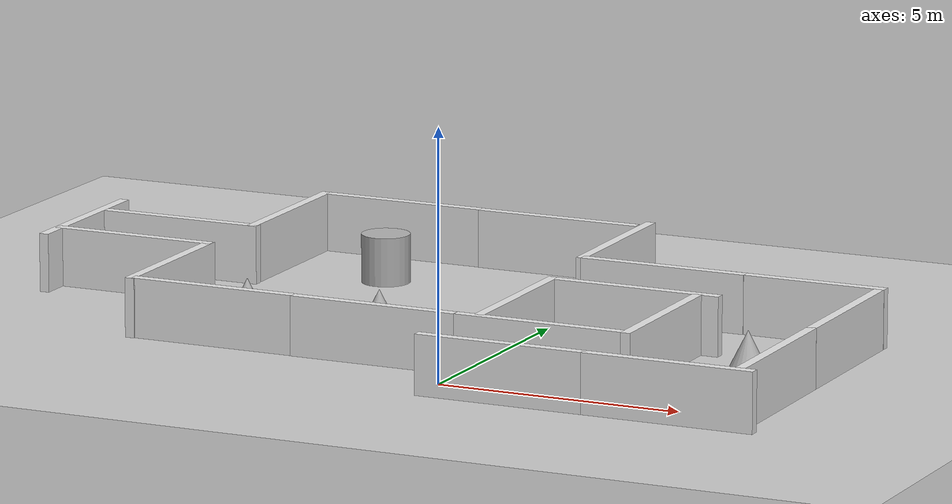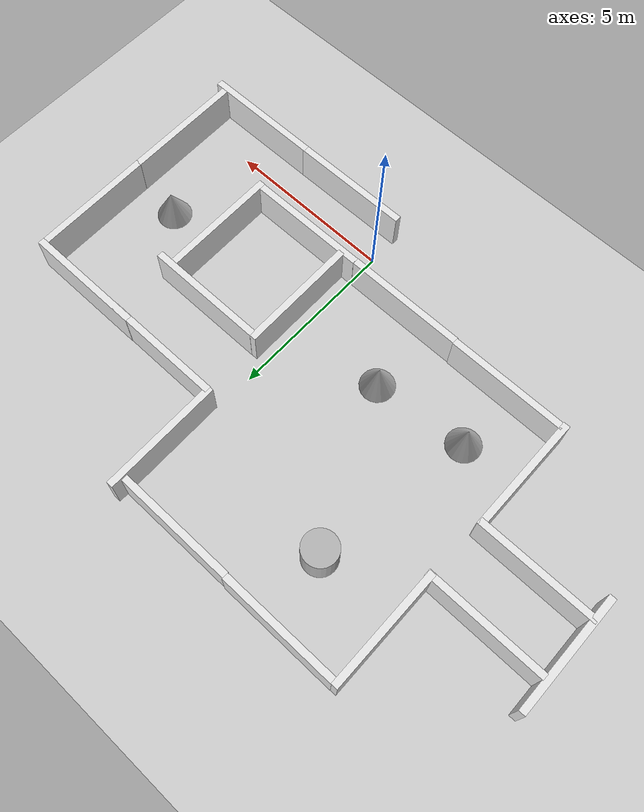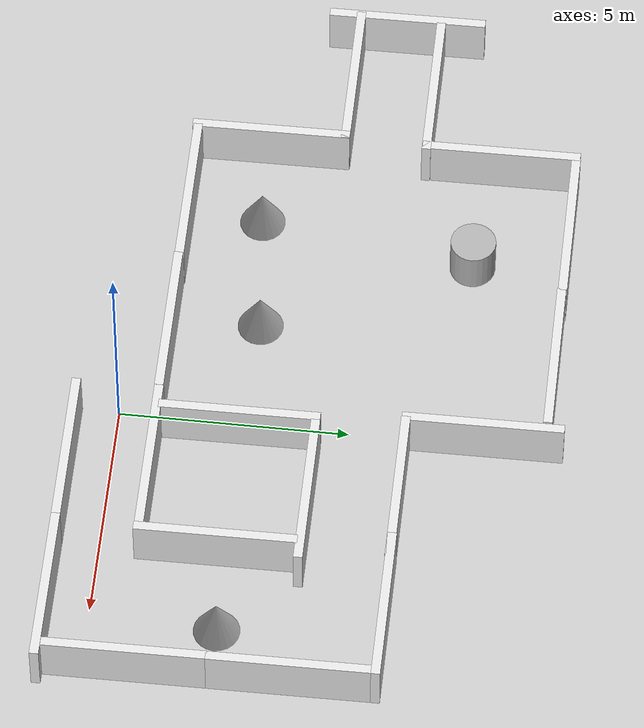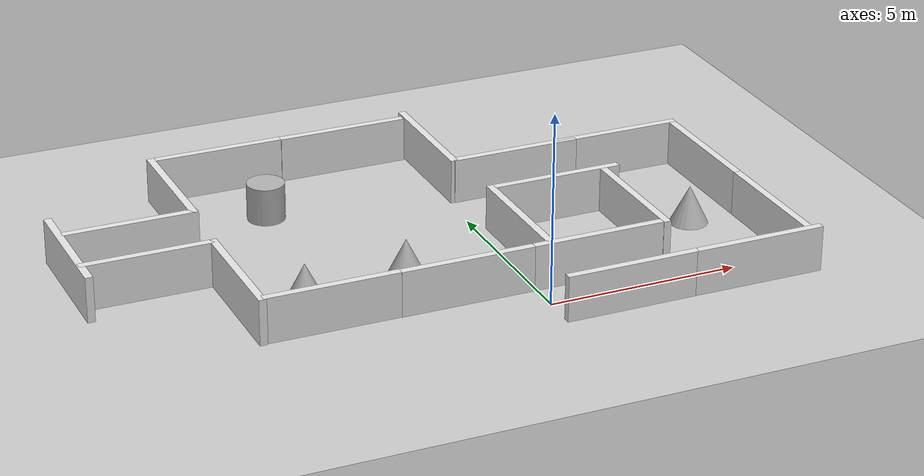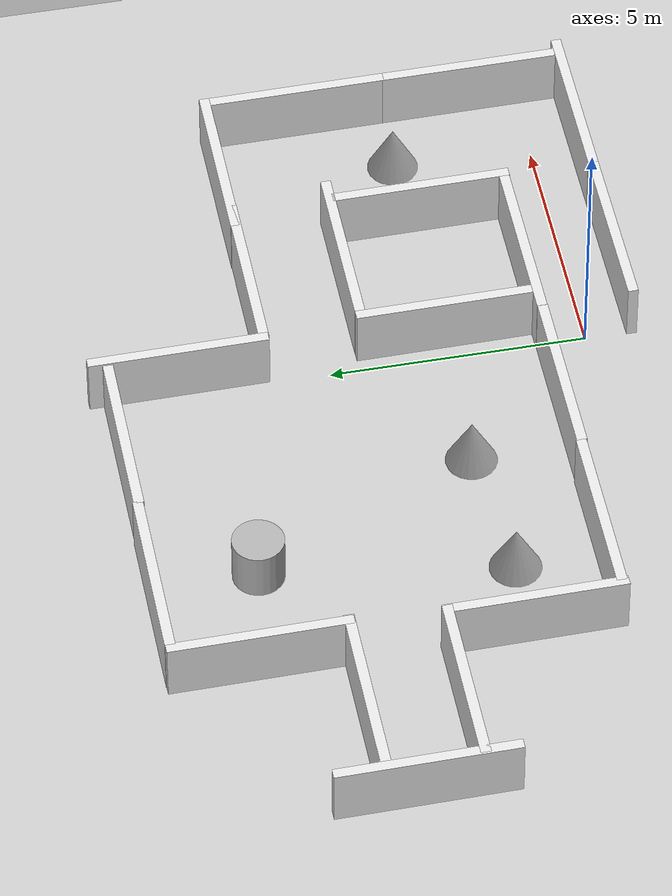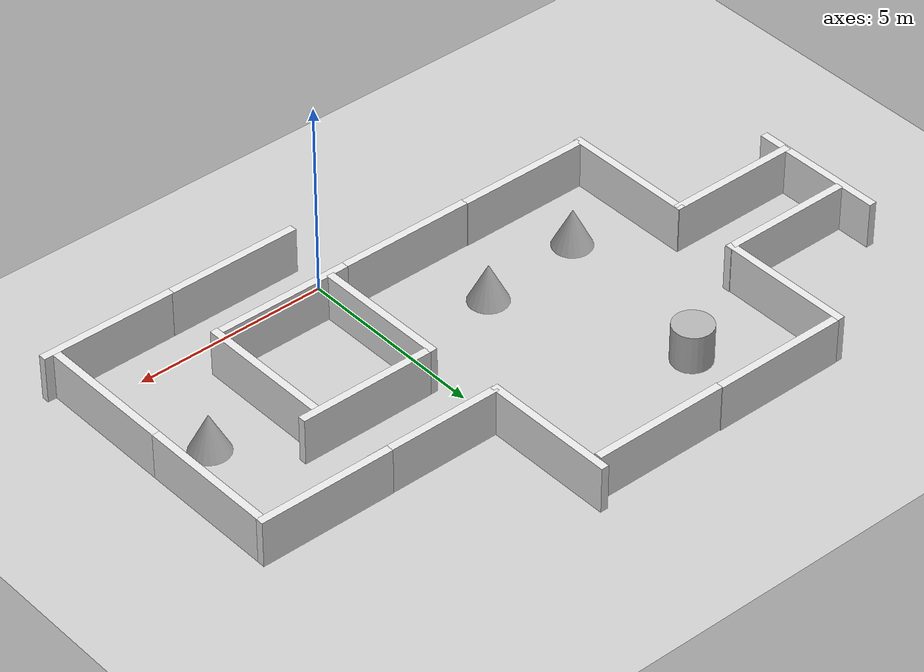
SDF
<?xml version="1.0" ?>

<sdf version="1.6">
  <world name="empty">
      <physics name='4ms' type='ode'>
      <max_step_size>0.004</max_step_size>
      <real_time_factor>1</real_time_factor>
      <real_time_update_rate>250</real_time_update_rate>
    </physics>
    <plugin name='gz::sim::systems::Physics' filename='gz-sim-physics-system'/>
    <plugin name='gz::sim::systems::UserCommands' filename='gz-sim-user-commands-system'/>
    <plugin name='gz::sim::systems::SceneBroadcaster' filename='gz-sim-scene-broadcaster-system'/>
    <plugin name='gz::sim::systems::Contact' filename='gz-sim-contact-system'/>
    <plugin name='gz::sim::systems::Sensors' filename='gz-sim-sensors-system'>
      <render_engine>ogre2</render_engine>
    </plugin>
    <plugin name='gz::sim::systems::Imu' filename='gz-sim-imu-system'/>
    <plugin
      filename="gz-sim-navsat-system"
      name="gz::sim::systems::NavSat">
    </plugin>
    <!-- Set the coordinates for the world origin -->
    <spherical_coordinates>
      <surface_model>EARTH_WGS84</surface_model>
      <world_frame_orientation>ENU</world_frame_orientation>
      <latitude_deg>47.478950</latitude_deg>
      <longitude_deg>19.057785</longitude_deg>
      <elevation>0</elevation>
      <heading_deg>0</heading_deg>
    </spherical_coordinates>

    <gravity>0 0 -9.8000000000000007</gravity>
    <magnetic_field>5.5644999999999998e-06 2.2875799999999999e-05 -4.2388400000000002e-05</magnetic_field>
    <atmosphere type='adiabatic'/>
    <scene>
      <ambient>0.400000006 0.400000006 0.400000006 1</ambient>
      <background>0.699999988 0.699999988 0.699999988 1</background>
      <shadows>true</shadows>
    </scene>
    <light type="directional" name="sun">
      <cast_shadows>true</cast_shadows>
      <pose>0 0 10 0 0 0</pose>
      <diffuse>0.8 0.8 0.8 1</diffuse>
      <specular>0.2 0.2 0.2 1</specular>
      <attenuation>
        <range>1000</range>
        <constant>0.9</constant>
        <linear>0.01</linear>
        <quadratic>0.001</quadratic>
      </attenuation>
      <direction>-0.5 0.1 -0.9</direction>
    </light>

    <model name="ground_plane">
      <static>true</static>
      <link name="link">
        <collision name="collision">
          <geometry>
            <plane>
              <normal>0 0 1</normal>
              <size>100 100</size>
            </plane>
          </geometry>
          <surface>
            <friction>
              <ode>
                <mu>50</mu>
              </ode>
            </friction>
            <bounce/>
            <contact/>
          </surface>
        </collision>
        <visual name="visual">
          <geometry>
            <plane>
              <normal>0 0 1</normal>
              <size>100 100</size>
            </plane>
          </geometry>
          <material>
            <ambient>0.8 0.8 0.8 1</ambient>
            <diffuse>0.8 0.8 0.8 1</diffuse>
            <specular>0.8 0.8 0.8 1</specular>
          </material>
        </visual>
      </link>
    </model>
    <model name='grey_wall_1'>
      <static>true</static>
      <link name='link'>
        <pose>0 0 1.3999999999999999 0 0 0</pose>
        <collision name='collision'>
          <geometry>
            <box>
              <size>3.5 0.20000000000000001 1.2</size>
            </box>
          </geometry>
          <surface>
            <friction>
              <ode/>
            </friction>
            <bounce/>
            <contact/>
          </surface>
        </collision>
        <visual name='visual'>
          <cast_shadows>false</cast_shadows>
          <geometry>
            <box>
              <size>3.5 0.20000000000000001 1.2</size>
            </box>
          </geometry>
          <material>
            <ambient>0.800000012 0.800000012 0.800000012 1</ambient>
            <diffuse>0.899999976 0.899999976 0.899999976 1</diffuse>
            <specular>0.100000001 0.100000001 0.100000001 1</specular>
          </material>
        </visual>
        <inertial>
          <pose>0 0 0 0 0 0</pose>
          <mass>1</mass>
          <inertia>
            <ixx>1</ixx>
            <ixy>0</ixy>
            <ixz>0</ixz>
            <iyy>1</iyy>
            <iyz>0</iyz>
            <izz>1</izz>
          </inertia>
        </inertial>
        <enable_wind>false</enable_wind>
      </link>
      <pose>5.1656638094872669 -0.89525418829218406 -0.79650002717971802 0 0 0</pose>
      <self_collide>false</self_collide>
    </model>
    <model name='grey_wall_2'>
      <static>true</static>
      <link name='link'>
        <pose>0 0 1.3999999999999999 0 0 0</pose>
        <collision name='collision'>
          <geometry>
            <box>
              <size>3.5 0.20000000000000001 1.2</size>
            </box>
          </geometry>
          <surface>
            <friction>
              <ode/>
            </friction>
            <bounce/>
            <contact/>
          </surface>
        </collision>
        <visual name='visual'>
          <cast_shadows>false</cast_shadows>
          <geometry>
            <box>
              <size>3.5 0.20000000000000001 1.2</size>
            </box>
          </geometry>
          <material>
            <ambient>0.800000012 0.800000012 0.800000012 1</ambient>
            <diffuse>0.899999976 0.899999976 0.899999976 1</diffuse>
            <specular>0.100000001 0.100000001 0.100000001 1</specular>
          </material>
        </visual>
        <inertial>
          <pose>0 0 0 0 0 0</pose>
          <mass>1</mass>
          <inertia>
            <ixx>1</ixx>
            <ixy>0</ixy>
            <ixz>0</ixz>
            <iyy>1</iyy>
            <iyz>0</iyz>
            <izz>1</izz>
          </inertia>
        </inertial>
        <enable_wind>false</enable_wind>
      </link>
      <pose>1.6882715194020816 0.88620328823797312 -0.79650002717971802 0 0 0</pose>
      <self_collide>false</self_collide>
    </model>
    <model name='grey_wall_3'>
      <static>true</static>
      <link name='link'>
        <pose>0 0 1.3999999999999999 0 0 0</pose>
        <collision name='collision'>
          <geometry>
            <box>
              <size>3.5 0.20000000000000001 1.2</size>
            </box>
          </geometry>
          <surface>
            <friction>
              <ode/>
            </friction>
            <bounce/>
            <contact/>
          </surface>
        </collision>
        <visual name='visual'>
          <cast_shadows>false</cast_shadows>
          <geometry>
            <box>
              <size>3.5 0.20000000000000001 1.2</size>
            </box>
          </geometry>
          <material>
            <ambient>0.800000012 0.800000012 0.800000012 1</ambient>
            <diffuse>0.899999976 0.899999976 0.899999976 1</diffuse>
            <specular>0.100000001 0.100000001 0.100000001 1</specular>
          </material>
        </visual>
        <inertial>
          <pose>0 0 0 0 0 0</pose>
          <mass>1</mass>
          <inertia>
            <ixx>1</ixx>
            <ixy>0</ixy>
            <ixz>0</ixz>
            <iyy>1</iyy>
            <iyz>0</iyz>
            <izz>1</izz>
          </inertia>
        </inertial>
        <enable_wind>false</enable_wind>
      </link>
      <pose>1.7170979027507753 -0.89997675056831605 -0.79650002717971802 0 0 0.0031365398844228481</pose>
      <self_collide>false</self_collide>
    </model>
    <model name='grey_wall_4'>
      <static>true</static>
      <link name='link'>
        <pose>0 0 1.3999999999999999 0 0 0</pose>
        <collision name='collision'>
          <geometry>
            <box>
              <size>3.5 0.20000000000000001 1.2</size>
            </box>
          </geometry>
          <surface>
            <friction>
              <ode/>
            </friction>
            <bounce/>
            <contact/>
          </surface>
        </collision>
        <visual name='visual'>
          <cast_shadows>false</cast_shadows>
          <geometry>
            <box>
              <size>3.5 0.20000000000000001 1.2</size>
            </box>
          </geometry>
          <material>
            <ambient>0.800000012 0.800000012 0.800000012 1</ambient>
            <diffuse>0.899999976 0.899999976 0.899999976 1</diffuse>
            <specular>0.100000001 0.100000001 0.100000001 1</specular>
          </material>
        </visual>
        <inertial>
          <pose>0 0 0 0 0 0</pose>
          <mass>1</mass>
          <inertia>
            <ixx>1</ixx>
            <ixy>0</ixy>
            <ixz>0</ixz>
            <iyy>1</iyy>
            <iyz>0</iyz>
            <izz>1</izz>
          </inertia>
        </inertial>
        <enable_wind>false</enable_wind>
      </link>
      <pose>3.521831637143559 2.5270021740473432 -0.79650002717971802 0 0 1.5797899017080024</pose>
      <self_collide>false</self_collide>
    </model>
    <model name='grey_wall_16'>
      <static>true</static>
      <link name='link'>
        <pose>0 0 1.3999999999999999 0 0 0</pose>
        <collision name='collision'>
          <geometry>
            <box>
              <size>3.5 0.20000000000000001 1.2</size>
            </box>
          </geometry>
          <surface>
            <friction>
              <ode/>
            </friction>
            <bounce/>
            <contact/>
          </surface>
        </collision>
        <visual name='visual'>
          <cast_shadows>false</cast_shadows>
          <geometry>
            <box>
              <size>3.5 0.20000000000000001 1.2</size>
            </box>
          </geometry>
          <material>
            <ambient>0.800000012 0.800000012 0.800000012 1</ambient>
            <diffuse>0.899999976 0.899999976 0.899999976 1</diffuse>
            <specular>0.100000001 0.100000001 0.100000001 1</specular>
          </material>
        </visual>
        <inertial>
          <pose>0 0 0 0 0 0</pose>
          <mass>1</mass>
          <inertia>
            <ixx>1</ixx>
            <ixy>0</ixy>
            <ixz>0</ixz>
            <iyy>1</iyy>
            <iyz>0</iyz>
            <izz>1</izz>
          </inertia>
        </inertial>
        <enable_wind>false</enable_wind>
      </link>
      <pose>6.5758289455464709 0.95628041037775535 -0.79650002717971802 0 0 1.5797899017080024</pose>
      <self_collide>false</self_collide>
    </model>
    <model name='grey_wall_17'>
      <static>true</static>
      <link name='link'>
        <pose>0 0 1.3999999999999999 0 0 0</pose>
        <collision name='collision'>
          <geometry>
            <box>
              <size>3.5 0.20000000000000001 1.2</size>
            </box>
          </geometry>
          <surface>
            <friction>
              <ode/>
            </friction>
            <bounce/>
            <contact/>
          </surface>
        </collision>
        <visual name='visual'>
          <cast_shadows>false</cast_shadows>
          <geometry>
            <box>
              <size>3.5 0.20000000000000001 1.2</size>
            </box>
          </geometry>
          <material>
            <ambient>0.800000012 0.800000012 0.800000012 1</ambient>
            <diffuse>0.899999976 0.899999976 0.899999976 1</diffuse>
            <specular>0.100000001 0.100000001 0.100000001 1</specular>
          </material>
        </visual>
        <inertial>
          <pose>0 0 0 0 0 0</pose>
          <mass>1</mass>
          <inertia>
            <ixx>1</ixx>
            <ixy>0</ixy>
            <ixz>0</ixz>
            <iyy>1</iyy>
            <iyz>0</iyz>
            <izz>1</izz>
          </inertia>
        </inertial>
        <enable_wind>false</enable_wind>
      </link>
      <pose>6.5453374079758788 4.4264452306406588 -0.79650002717971802 0 0 1.5797899017080024</pose>
      <self_collide>false</self_collide>
    </model>
    <model name='grey_wall_1_1'>
      <static>true</static>
      <link name='link'>
        <pose>0 0 1.3999999999999999 0 0 0</pose>
        <collision name='collision'>
          <geometry>
            <box>
              <size>3.5 0.20000000000000001 1.2</size>
            </box>
          </geometry>
          <surface>
            <friction>
              <ode/>
            </friction>
            <bounce/>
            <contact/>
          </surface>
        </collision>
        <visual name='visual'>
          <cast_shadows>false</cast_shadows>
          <geometry>
            <box>
              <size>3.5 0.20000000000000001 1.2</size>
            </box>
          </geometry>
          <material>
            <ambient>0.800000012 0.800000012 0.800000012 1</ambient>
            <diffuse>0.899999976 0.899999976 0.899999976 1</diffuse>
            <specular>0.100000001 0.100000001 0.100000001 1</specular>
          </material>
        </visual>
        <inertial>
          <pose>0 0 0 0 0 0</pose>
          <mass>1</mass>
          <inertia>
            <ixx>1</ixx>
            <ixy>0</ixy>
            <ixz>0</ixz>
            <iyy>1</iyy>
            <iyz>0</iyz>
            <izz>1</izz>
          </inertia>
        </inertial>
        <enable_wind>false</enable_wind>
      </link>
      <pose>2.2101700305938721 4.3333702087402344 -0.79650002717971802 0 0 0</pose>
      <self_collide>false</self_collide>
    </model>
    <model name='grey_wall_1_2'>
      <static>true</static>
      <link name='link'>
        <pose>0 0 1.3999999999999999 0 0 0</pose>
        <collision name='collision'>
          <geometry>
            <box>
              <size>3.5 0.20000000000000001 1.2</size>
            </box>
          </geometry>
          <surface>
            <friction>
              <ode/>
            </friction>
            <bounce/>
            <contact/>
          </surface>
        </collision>
        <visual name='visual'>
          <cast_shadows>false</cast_shadows>
          <geometry>
            <box>
              <size>3.5 0.20000000000000001 1.2</size>
            </box>
          </geometry>
          <material>
            <ambient>0.800000012 0.800000012 0.800000012 1</ambient>
            <diffuse>0.899999976 0.899999976 0.899999976 1</diffuse>
            <specular>0.100000001 0.100000001 0.100000001 1</specular>
          </material>
        </visual>
        <inertial>
          <pose>0 0 0 0 0 0</pose>
          <mass>1</mass>
          <inertia>
            <ixx>1</ixx>
            <ixy>0</ixy>
            <ixz>0</ixz>
            <iyy>1</iyy>
            <iyz>0</iyz>
            <izz>1</izz>
          </inertia>
        </inertial>
        <enable_wind>false</enable_wind>
      </link>
      <pose>4.8812479972839355 6.2586002349853516 -0.79650002717971802 0 0 0</pose>
      <self_collide>false</self_collide>
    </model>
    <model name='grey_wall_1_2_1'>
      <static>true</static>
      <link name='link'>
        <pose>0 0 1.3999999999999999 0 0 0</pose>
        <collision name='collision'>
          <geometry>
            <box>
              <size>3.5 0.20000000000000001 1.2</size>
            </box>
          </geometry>
          <surface>
            <friction>
              <ode/>
            </friction>
            <bounce/>
            <contact/>
          </surface>
        </collision>
        <visual name='visual'>
          <cast_shadows>false</cast_shadows>
          <geometry>
            <box>
              <size>3.5 0.20000000000000001 1.2</size>
            </box>
          </geometry>
          <material>
            <ambient>0.800000012 0.800000012 0.800000012 1</ambient>
            <diffuse>0.899999976 0.899999976 0.899999976 1</diffuse>
            <specular>0.100000001 0.100000001 0.100000001 1</specular>
          </material>
        </visual>
      </link>
      <pose>1.9185481384155452 6.2506046673839268 -0.79650002717971802 0 0 0</pose>
      <self_collide>false</self_collide>
    </model>
    <model name='grey_wall_4_1'>
      <static>true</static>
      <link name='link'>
        <pose>0 0 1.3999999999999999 0 0 0</pose>
        <collision name='collision'>
          <geometry>
            <box>
              <size>3.5 0.20000000000000001 1.2</size>
            </box>
          </geometry>
          <surface>
            <friction>
              <ode/>
            </friction>
            <bounce/>
            <contact/>
          </surface>
        </collision>
        <visual name='visual'>
          <cast_shadows>false</cast_shadows>
          <geometry>
            <box>
              <size>3.5 0.20000000000000001 1.2</size>
            </box>
          </geometry>
          <material>
            <ambient>0.800000012 0.800000012 0.800000012 1</ambient>
            <diffuse>0.899999976 0.899999976 0.899999976 1</diffuse>
            <specular>0.100000001 0.100000001 0.100000001 1</specular>
          </material>
        </visual>
      </link>
      <pose>0.38921218837450144 2.678288199328235 -0.79650002717971802 0 0 1.5797899017080024</pose>
      <self_collide>false</self_collide>
    </model>
    <model name='grey_wall_4_2'>
      <static>true</static>
      <link name='link'>
        <pose>0 0 1.3999999999999999 0 0 0</pose>
        <collision name='collision'>
          <geometry>
            <box>
              <size>3.5 0.20000000000000001 1.2</size>
            </box>
          </geometry>
          <surface>
            <friction>
              <ode/>
            </friction>
            <bounce/>
            <contact/>
          </surface>
        </collision>
        <visual name='visual'>
          <cast_shadows>false</cast_shadows>
          <geometry>
            <box>
              <size>3.5 0.20000000000000001 1.2</size>
            </box>
          </geometry>
          <material>
            <ambient>0.800000012 0.800000012 0.800000012 1</ambient>
            <diffuse>0.899999976 0.899999976 0.899999976 1</diffuse>
            <specular>0.100000001 0.100000001 0.100000001 1</specular>
          </material>
        </visual>
      </link>
      <pose>0.14724260905203934 7.9142341695203182 -0.79650002717971802 0 0 1.5797899017080024</pose>
      <self_collide>false</self_collide>
    </model>
    <model name='grey_wall_1_2_1_1'>
      <static>true</static>
      <link name='link'>
        <pose>0 0 1.3999999999999999 0 0 0</pose>
        <collision name='collision'>
          <geometry>
            <box>
              <size>3.5 0.20000000000000001 1.2</size>
            </box>
          </geometry>
          <surface>
            <friction>
              <ode/>
            </friction>
            <bounce/>
            <contact/>
          </surface>
        </collision>
        <visual name='visual'>
          <cast_shadows>false</cast_shadows>
          <geometry>
            <box>
              <size>3.5 0.20000000000000001 1.2</size>
            </box>
          </geometry>
          <material>
            <ambient>0.800000012 0.800000012 0.800000012 1</ambient>
            <diffuse>0.899999976 0.899999976 0.899999976 1</diffuse>
            <specular>0.100000001 0.100000001 0.100000001 1</specular>
          </material>
        </visual>
      </link>
      <pose>-1.813094809879771 0.88006536024963555 -0.79650002717971802 0 0 0</pose>
      <self_collide>false</self_collide>
    </model>
    <model name='grey_wall_1_2_1_2'>
      <static>true</static>
      <link name='link'>
        <pose>0 0 1.3999999999999999 0 0 0</pose>
        <collision name='collision'>
          <geometry>
            <box>
              <size>3.5 0.20000000000000001 1.2</size>
            </box>
          </geometry>
          <surface>
            <friction>
              <ode/>
            </friction>
            <bounce/>
            <contact/>
          </surface>
        </collision>
        <visual name='visual'>
          <cast_shadows>false</cast_shadows>
          <geometry>
            <box>
              <size>3.5 0.20000000000000001 1.2</size>
            </box>
          </geometry>
          <material>
            <ambient>0.800000012 0.800000012 0.800000012 1</ambient>
            <diffuse>0.899999976 0.899999976 0.899999976 1</diffuse>
            <specular>0.100000001 0.100000001 0.100000001 1</specular>
          </material>
        </visual>
      </link>
      <pose>-5.2984815226765694 0.89704285673438688 -0.79650002717971802 0 0 0</pose>
      <self_collide>false</self_collide>
    </model>
    <model name='grey_wall_1_2_1_3'>
      <static>true</static>
      <link name='link'>
        <pose>0 0 1.3999999999999999 0 0 0</pose>
        <collision name='collision'>
          <geometry>
            <box>
              <size>3.5 0.20000000000000001 1.2</size>
            </box>
          </geometry>
          <surface>
            <friction>
              <ode/>
            </friction>
            <bounce/>
            <contact/>
          </surface>
        </collision>
        <visual name='visual'>
          <cast_shadows>false</cast_shadows>
          <geometry>
            <box>
              <size>3.5 0.20000000000000001 1.2</size>
            </box>
          </geometry>
          <material>
            <ambient>0.800000012 0.800000012 0.800000012 1</ambient>
            <diffuse>0.899999976 0.899999976 0.899999976 1</diffuse>
            <specular>0.100000001 0.100000001 0.100000001 1</specular>
          </material>
        </visual>
      </link>
      <pose>-1.7518831392086571 9.2887133892977456 -0.79650002717971802 0 0 0</pose>
      <self_collide>false</self_collide>
    </model>
    <model name='grey_wall_1_2_1_4'>
      <static>true</static>
      <link name='link'>
        <pose>0 0 1.3999999999999999 0 0 0</pose>
        <collision name='collision'>
          <geometry>
            <box>
              <size>3.5 0.20000000000000001 1.2</size>
            </box>
          </geometry>
          <surface>
            <friction>
              <ode/>
            </friction>
            <bounce/>
            <contact/>
          </surface>
        </collision>
        <visual name='visual'>
          <cast_shadows>false</cast_shadows>
          <geometry>
            <box>
              <size>3.5 0.20000000000000001 1.2</size>
            </box>
          </geometry>
          <material>
            <ambient>0.800000012 0.800000012 0.800000012 1</ambient>
            <diffuse>0.899999976 0.899999976 0.899999976 1</diffuse>
            <specular>0.100000001 0.100000001 0.100000001 1</specular>
          </material>
        </visual>
      </link>
      <pose>-5.2263163405159494 9.3078704136796837 -0.79650002717971802 0 0 0</pose>
      <self_collide>false</self_collide>
    </model>
    <model name='grey_wall_4_2_2'>
      <static>true</static>
      <link name='link'>
        <pose>0 0 1.3999999999999999 0 0 0</pose>
        <collision name='collision'>
          <geometry>
            <box>
              <size>3.5 0.20000000000000001 1.2</size>
            </box>
          </geometry>
          <surface>
            <friction>
              <ode/>
            </friction>
            <bounce/>
            <contact/>
          </surface>
        </collision>
        <visual name='visual'>
          <cast_shadows>false</cast_shadows>
          <geometry>
            <box>
              <size>3.5 0.20000000000000001 1.2</size>
            </box>
          </geometry>
          <material>
            <ambient>0.800000012 0.800000012 0.800000012 1</ambient>
            <diffuse>0.899999976 0.899999976 0.899999976 1</diffuse>
            <specular>0.100000001 0.100000001 0.100000001 1</specular>
          </material>
        </visual>
      </link>
      <pose>-7.0381139435787574 7.6482400224603104 -0.79650002717971802 0 0 1.5797899017080024</pose>
      <self_collide>false</self_collide>
    </model>
    <model name='grey_wall_1_2_1_4_1'>
      <static>true</static>
      <link name='link'>
        <pose>0 0 1.3999999999999999 0 0 0</pose>
        <collision name='collision'>
          <geometry>
            <box>
              <size>3.5 0.20000000000000001 1.2</size>
            </box>
          </geometry>
          <surface>
            <friction>
              <ode/>
            </friction>
            <bounce/>
            <contact/>
          </surface>
        </collision>
        <visual name='visual'>
          <cast_shadows>false</cast_shadows>
          <geometry>
            <box>
              <size>3.5 0.20000000000000001 1.2</size>
            </box>
          </geometry>
          <material>
            <ambient>0.800000012 0.800000012 0.800000012 1</ambient>
            <diffuse>0.899999976 0.899999976 0.899999976 1</diffuse>
            <specular>0.100000001 0.100000001 0.100000001 1</specular>
          </material>
        </visual>
      </link>
      <pose>-8.6569098004786298 5.9849625700380171 -0.79650002717971802 0 0 0</pose>
      <self_collide>false</self_collide>
    </model>
    <model name='grey_wall_1_2_1_4_2'>
      <static>true</static>
      <link name='link'>
        <pose>0 0 1.3999999999999999 0 0 0</pose>
        <collision name='collision'>
          <geometry>
            <box>
              <size>3.5 0.20000000000000001 1.2</size>
            </box>
          </geometry>
          <surface>
            <friction>
              <ode/>
            </friction>
            <bounce/>
            <contact/>
          </surface>
        </collision>
        <visual name='visual'>
          <cast_shadows>false</cast_shadows>
          <geometry>
            <box>
              <size>3.5 0.20000000000000001 1.2</size>
            </box>
          </geometry>
          <material>
            <ambient>0.800000012 0.800000012 0.800000012 1</ambient>
            <diffuse>0.899999976 0.899999976 0.899999976 1</diffuse>
            <specular>0.100000001 0.100000001 0.100000001 1</specular>
          </material>
        </visual>
      </link>
      <pose>-8.7739875298704675 4.1769896100721304 -0.79650002717971802 0 0 0</pose>
      <self_collide>false</self_collide>
    </model>
    <model name='grey_wall_4_2_2_1'>
      <static>true</static>
      <link name='link'>
        <pose>0 0 1.3999999999999999 0 0 0</pose>
        <collision name='collision'>
          <geometry>
            <box>
              <size>3.5 0.20000000000000001 1.2</size>
            </box>
          </geometry>
          <surface>
            <friction>
              <ode/>
            </friction>
            <bounce/>
            <contact/>
          </surface>
        </collision>
        <visual name='visual'>
          <cast_shadows>false</cast_shadows>
          <geometry>
            <box>
              <size>3.5 0.20000000000000001 1.2</size>
            </box>
          </geometry>
          <material>
            <ambient>0.800000012 0.800000012 0.800000012 1</ambient>
            <diffuse>0.899999976 0.899999976 0.899999976 1</diffuse>
            <specular>0.100000001 0.100000001 0.100000001 1</specular>
          </material>
        </visual>
      </link>
      <pose>-7.0921540693366598 2.5200528518816747 -0.79650002717971802 0 0 1.5797899017080024</pose>
      <self_collide>false</self_collide>
    </model>
    <model name='grey_wall_4_2_2_2'>
      <static>true</static>
      <link name='link'>
        <pose>0 0 1.3999999999999999 0 0 0</pose>
        <collision name='collision'>
          <geometry>
            <box>
              <size>3.5 0.20000000000000001 1.2</size>
            </box>
          </geometry>
          <surface>
            <friction>
              <ode/>
            </friction>
            <bounce/>
            <contact/>
          </surface>
        </collision>
        <visual name='visual'>
          <cast_shadows>false</cast_shadows>
          <geometry>
            <box>
              <size>3.5 0.20000000000000001 1.2</size>
            </box>
          </geometry>
          <material>
            <ambient>0.800000012 0.800000012 0.800000012 1</ambient>
            <diffuse>0.899999976 0.899999976 0.899999976 1</diffuse>
            <specular>0.100000001 0.100000001 0.100000001 1</specular>
          </material>
        </visual>
      </link>
      <pose>-10.471801576395974 5.217886917218598 -0.79650002717971802 0 0 1.5797899017080024</pose>
      <self_collide>false</self_collide>
    </model>
    <model name='cone'>
      <pose>-2.6218496010774444 2.7864100085939554 0.49999999993296756 5.2544475711148228e-17 -7.713284103730715e-10 -2.7496961812708449e-22</pose>
      <link name='cone_link'>
        <inertial>
          <inertia>
            <ixx>0.074999999999999997</ixx>
            <ixy>0</ixy>
            <ixz>0</ixz>
            <iyy>0.074999999999999997</iyy>
            <iyz>0</iyz>
            <izz>0.074999999999999997</izz>
          </inertia>
          <mass>1</mass>
          <pose>0 0 0 0 0 0</pose>
        </inertial>
        <collision name='cone_collision'>
          <geometry>
            <cone>
              <radius>0.5</radius>
              <length>1</length>
            </cone>
          </geometry>
          <surface>
            <friction>
              <ode/>
            </friction>
            <bounce/>
            <contact/>
          </surface>
        </collision>
        <visual name='cone_visual'>
          <geometry>
            <cone>
              <radius>0.5</radius>
              <length>1</length>
            </cone>
          </geometry>
          <material>
            <ambient>0.300000012 0.300000012 0.300000012 1</ambient>
            <diffuse>0.699999988 0.699999988 0.699999988 1</diffuse>
            <specular>1 1 1 1</specular>
          </material>
        </visual>
        <pose>0 0 0 0 0 0</pose>
        <enable_wind>false</enable_wind>
      </link>
      <static>false</static>
      <self_collide>false</self_collide>
    </model>
    <model name='cylinder'>
      <pose>-4.6570115254612245 7.253282117601362 0.49999942638036005 1.4791985356845438e-19 1.4972789545721011e-19 2.6004928875906215e-20</pose>
      <link name='cylinder_link'>
        <inertial>
          <inertia>
            <ixx>0.14580000000000001</ixx>
            <ixy>0</ixy>
            <ixz>0</ixz>
            <iyy>0.14580000000000001</iyy>
            <iyz>0</iyz>
            <izz>0.125</izz>
          </inertia>
          <mass>1</mass>
          <pose>0 0 0 0 0 0</pose>
        </inertial>
        <collision name='cylinder_collision'>
          <geometry>
            <cylinder>
              <radius>0.5</radius>
              <length>1</length>
            </cylinder>
          </geometry>
          <surface>
            <friction>
              <ode/>
            </friction>
            <bounce/>
            <contact/>
          </surface>
        </collision>
        <visual name='cylinder_visual'>
          <geometry>
            <cylinder>
              <radius>0.5</radius>
              <length>1</length>
            </cylinder>
          </geometry>
          <material>
            <ambient>0.300000012 0.300000012 0.300000012 1</ambient>
            <diffuse>0.699999988 0.699999988 0.699999988 1</diffuse>
            <specular>1 1 1 1</specular>
          </material>
        </visual>
        <pose>0 0 0 0 0 0</pose>
        <enable_wind>false</enable_wind>
      </link>
      <static>false</static>
      <self_collide>false</self_collide>
    </model>
    <model name='cone_0'>
      <pose>5.2304687394723901 2.7444049064557809 0.49999999993296756 5.254931119316858e-17 -7.7132841033999823e-10 6.969765996526587e-23</pose>
      <link name='cone_link'>
        <inertial>
          <inertia>
            <ixx>0.074999999999999997</ixx>
            <ixy>0</ixy>
            <ixz>0</ixz>
            <iyy>0.074999999999999997</iyy>
            <iyz>0</iyz>
            <izz>0.074999999999999997</izz>
          </inertia>
          <mass>1</mass>
          <pose>0 0 0 0 0 0</pose>
        </inertial>
        <collision name='cone_collision'>
          <geometry>
            <cone>
              <radius>0.5</radius>
              <length>1</length>
            </cone>
          </geometry>
          <surface>
            <friction>
              <ode/>
            </friction>
            <bounce/>
            <contact/>
          </surface>
        </collision>
        <visual name='cone_visual'>
          <geometry>
            <cone>
              <radius>0.5</radius>
              <length>1</length>
            </cone>
          </geometry>
          <material>
            <ambient>0.300000012 0.300000012 0.300000012 1</ambient>
            <diffuse>0.699999988 0.699999988 0.699999988 1</diffuse>
            <specular>1 1 1 1</specular>
          </material>
        </visual>
        <pose>0 0 0 0 0 0</pose>
        <enable_wind>false</enable_wind>
      </link>
      <static>false</static>
      <self_collide>false</self_collide>
    </model>
    <model name='cone_1'>
      <pose>-5.3817032880192546 2.5204101208903005 0.49999999993296756 5.254112337112289e-17 -7.7132841035481852e-10 1.1756787404075212e-22</pose>
      <link name='cone_link'>
        <inertial>
          <inertia>
            <ixx>0.074999999999999997</ixx>
            <ixy>0</ixy>
            <ixz>0</ixz>
            <iyy>0.074999999999999997</iyy>
            <iyz>0</iyz>
            <izz>0.074999999999999997</izz>
          </inertia>
          <mass>1</mass>
          <pose>0 0 0 0 0 0</pose>
        </inertial>
        <collision name='cone_collision'>
          <geometry>
            <cone>
              <radius>0.5</radius>
              <length>1</length>
            </cone>
          </geometry>
          <surface>
            <friction>
              <ode/>
            </friction>
            <bounce/>
            <contact/>
          </surface>
        </collision>
        <visual name='cone_visual'>
          <geometry>
            <cone>
              <radius>0.5</radius>
              <length>1</length>
            </cone>
          </geometry>
          <material>
            <ambient>0.300000012 0.300000012 0.300000012 1</ambient>
            <diffuse>0.699999988 0.699999988 0.699999988 1</diffuse>
            <specular>1 1 1 1</specular>
          </material>
        </visual>
        <pose>0 0 0 0 0 0</pose>
        <enable_wind>false</enable_wind>
      </link>
      <static>false</static>
      <self_collide>false</self_collide>
    </model>

  </world>
</sdf>
